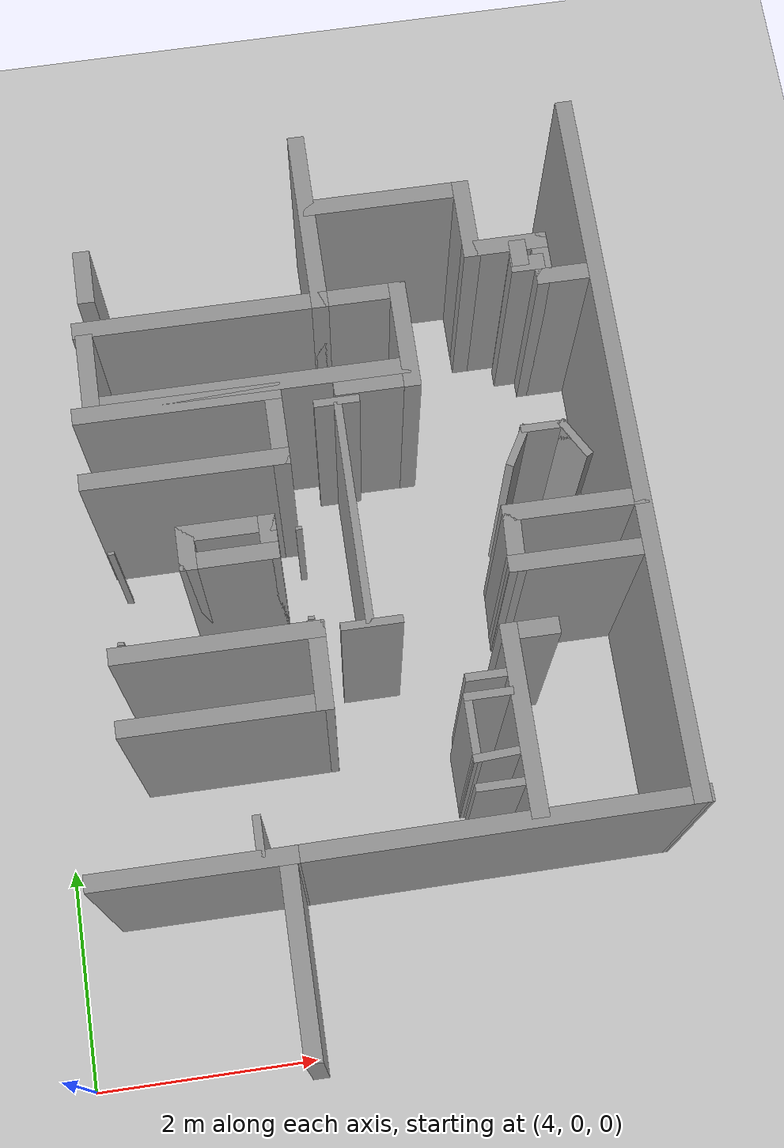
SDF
<sdf version="1.6">
 <world name="default">
  <model name="ground_plane">
   <static>1</static>
   <link name="link">
    <collision name="collision">
     <geometry><plane><normal>0 0 1</normal><size>100 100</size></plane></geometry>
     <surface><friction><ode><mu>100</mu><mu2>50</mu2></ode></friction></surface>
    </collision>
    <visual name="visual">
     <cast_shadows>0</cast_shadows>
     <geometry><plane><normal>0 0 1</normal><size>100 100</size></plane></geometry>
     <material>
      <script><uri>file://media/materials/scripts/gazebo.material</uri><name>Gazebo/Grey</name></script>
     </material>
    </visual>
   </link>
  </model>
  <model name="room4">
   <pose>4.66 3.88 0 0 -0 3.14</pose>
   <link name="Wall_101">
    <collision name="Wall_101_Collision">
     <geometry><box><size>0.5 0.15 2.5</size></box></geometry>
     <pose>0 0 1.25 0 -0 0</pose>
    </collision>
    <visual name="Wall_101_Visual">
     <pose>0 0 1.25 0 -0 0</pose>
     <geometry><box><size>0.5 0.15 2.5</size></box></geometry>
     <material>
      <script><uri>file://media/materials/scripts/gazebo.material</uri><name>Gazebo/Grey</name></script>
      <ambient>1 1 1 1</ambient>
     </material>
     <meta><layer>0</layer></meta>
    </visual>
    <pose>-0.238275 -2.90211 0 0 -0 1.5708</pose>
   </link>
   <link name="Wall_103">
    <collision name="Wall_103_Collision">
     <geometry><box><size>0.85 0.15 2.5</size></box></geometry>
     <pose>0 0 1.25 0 -0 0</pose>
    </collision>
    <visual name="Wall_103_Visual">
     <pose>0 0 1.25 0 -0 0</pose>
     <geometry><box><size>0.85 0.15 2.5</size></box></geometry>
     <material>
      <script><uri>file://media/materials/scripts/gazebo.material</uri><name>Gazebo/Grey</name></script>
      <ambient>1 1 1 1</ambient>
     </material>
     <meta><layer>0</layer></meta>
    </visual>
    <pose>-1.20078 -0.157139 0 0 -0 0</pose>
   </link>
   <link name="Wall_105">
    <collision name="Wall_105_Collision">
     <geometry><box><size>0.4 0.15 2.5</size></box></geometry>
     <pose>0 0 1.25 0 -0 0</pose>
    </collision>
    <visual name="Wall_105_Visual">
     <pose>0 0 1.25 0 -0 0</pose>
     <geometry><box><size>0.4 0.15 2.5</size></box></geometry>
     <material>
      <script><uri>file://media/materials/scripts/gazebo.material</uri><name>Gazebo/Grey</name></script>
      <ambient>1 1 1 1</ambient>
     </material>
     <meta><layer>0</layer></meta>
    </visual>
    <pose>-0.850776 -0.282139 0 0 -0 -1.5708</pose>
   </link>
   <link name="Wall_109">
    <collision name="Wall_109_Collision">
     <geometry><box><size>0.4 0.15 2.5</size></box></geometry>
     <pose>0 0 1.25 0 -0 0</pose>
    </collision>
    <visual name="Wall_109_Visual">
     <pose>0 0 1.25 0 -0 0</pose>
     <geometry><box><size>0.4 0.15 2.5</size></box></geometry>
     <material>
      <script><uri>file://media/materials/scripts/gazebo.material</uri><name>Gazebo/Grey</name></script>
      <ambient>1 1 1 1</ambient>
     </material>
     <meta><layer>0</layer></meta>
    </visual>
    <pose>-1.55078 -0.282139 0 0 -0 -1.5708</pose>
   </link>
   <link name="Wall_116">
    <collision name="Wall_116_Collision">
     <geometry><box><size>0.85 0.15 2.5</size></box></geometry>
     <pose>0 0 1.25 0 -0 0</pose>
    </collision>
    <visual name="Wall_116_Visual">
     <pose>0 0 1.25 0 -0 0</pose>
     <geometry><box><size>0.85 0.15 2.5</size></box></geometry>
     <material>
      <script><uri>file://media/materials/scripts/gazebo.material</uri><name>Gazebo/Grey</name></script>
      <ambient>1 1 1 1</ambient>
     </material>
     <meta><layer>0</layer></meta>
    </visual>
    <pose>-1.20078 -0.407139 0 0 -0 0</pose>
   </link>
   <link name="Wall_118">
    <collision name="Wall_118_Collision">
     <geometry><box><size>0.35 0.07 2.5</size></box></geometry>
     <pose>0 0 1.25 0 -0 0</pose>
    </collision>
    <visual name="Wall_118_Visual">
     <pose>0 0 1.25 0 -0 0</pose>
     <geometry><box><size>0.35 0.07 2.5</size></box></geometry>
     <material>
      <script><uri>file://media/materials/scripts/gazebo.material</uri><name>Gazebo/Grey</name></script>
      <ambient>1 1 1 1</ambient>
     </material>
     <meta><layer>0</layer></meta>
    </visual>
    <pose>-1.15474 2.22246 0 0 -0 1.5708</pose>
   </link>
   <link name="Wall_16">
    <collision name="Wall_16_Collision">
     <geometry><box><size>1.73309 0.15 2.5</size></box></geometry>
     <pose>0 0 1.25 0 -0 0</pose>
    </collision>
    <visual name="Wall_16_Visual">
     <pose>0 0 1.25 0 -0 0</pose>
     <geometry><box><size>1.73309 0.15 2.5</size></box></geometry>
     <material>
      <script><uri>file://media/materials/scripts/gazebo.material</uri><name>Gazebo/Grey</name></script>
      <ambient>1 1 1 1</ambient>
     </material>
     <meta><layer>0</layer></meta>
    </visual>
    <pose>-0.591667 2.40966 0 0 -0 -3.14153</pose>
   </link>
   <link name="Wall_2">
    <collision name="Wall_2_Collision">
     <geometry><box><size>6.50004 0.15 2.5</size></box></geometry>
     <pose>0 0 1.25 0 -0 0</pose>
    </collision>
    <visual name="Wall_2_Visual">
     <pose>0 0 1.25 0 -0 0</pose>
     <geometry><box><size>6.50004 0.15 2.5</size></box></geometry>
     <material>
      <script><uri>file://media/materials/scripts/gazebo.material</uri><name>Gazebo/Grey</name></script>
      <ambient>1 1 1 1</ambient>
     </material>
     <meta><layer>0</layer></meta>
    </visual>
    <pose>-4.72471 -0.79139 0 0 -0 1.57442</pose>
   </link>
   <link name="Wall_22">
    <collision name="Wall_22_Collision">
     <geometry><box><size>1.65 0.15 2.5</size></box></geometry>
     <pose>0 0 1.25 0 -0 0</pose>
    </collision>
    <visual name="Wall_22_Visual">
     <pose>0 0 1.25 0 -0 0</pose>
     <geometry><box><size>1.65 0.15 2.5</size></box></geometry>
     <material>
      <script><uri>file://media/materials/scripts/gazebo.material</uri><name>Gazebo/Grey</name></script>
      <ambient>1 1 1 1</ambient>
     </material>
     <meta><layer>0</layer></meta>
    </visual>
    <pose>-3.42012 1.5697 0 0 -0 -1.5708</pose>
   </link>
   <link name="Wall_23">
    <collision name="Wall_23_Collision">
     <geometry><box><size>0.5 0.15 2.5</size></box></geometry>
     <pose>0 0 1.25 0 -0 0</pose>
    </collision>
    <visual name="Wall_23_Visual">
     <pose>0 0 1.25 0 -0 0</pose>
     <geometry><box><size>0.5 0.15 2.5</size></box></geometry>
     <material>
      <script><uri>file://media/materials/scripts/gazebo.material</uri><name>Gazebo/Grey</name></script>
      <ambient>1 1 1 1</ambient>
     </material>
     <meta><layer>0</layer></meta>
    </visual>
    <pose>-3.59512 0.819703 0 0 -0 3.14159</pose>
   </link>
   <link name="Wall_25">
    <collision name="Wall_25_Collision">
     <geometry><box><size>0.420174 0.07 2.5</size></box></geometry>
     <pose>0 0 1.25 0 -0 0</pose>
    </collision>
    <visual name="Wall_25_Visual">
     <pose>0 0 1.25 0 -0 0</pose>
     <geometry><box><size>0.420174 0.07 2.5</size></box></geometry>
     <material>
      <script><uri>file://media/materials/scripts/gazebo.material</uri><name>Gazebo/Grey</name></script>
      <ambient>1 1 1 1</ambient>
     </material>
     <meta><layer>0</layer></meta>
    </visual>
    <pose>-3.20529 1.15958 0 0 -0 0</pose>
   </link>
   <link name="Wall_28">
    <collision name="Wall_28_Collision">
     <geometry><box><size>0.420571 0.07 2.5</size></box></geometry>
     <pose>0 0 1.25 0 -0 0</pose>
    </collision>
    <visual name="Wall_28_Visual">
     <pose>0 0 1.25 0 -0 0</pose>
     <geometry><box><size>0.420571 0.07 2.5</size></box></geometry>
     <material>
      <script><uri>file://media/materials/scripts/gazebo.material</uri><name>Gazebo/Grey</name></script>
      <ambient>1 1 1 1</ambient>
     </material>
     <meta><layer>0</layer></meta>
    </visual>
    <pose>-3.16529 1.82958 0 0 -0 0.057081</pose>
   </link>
   <link name="Wall_29">
    <collision name="Wall_29_Collision">
     <geometry><box><size>0.59 0.07 2.5</size></box></geometry>
     <pose>0 0 1.25 0 -0 0</pose>
    </collision>
    <visual name="Wall_29_Visual">
     <pose>0 0 1.25 0 -0 0</pose>
     <geometry><box><size>0.59 0.07 2.5</size></box></geometry>
     <material>
      <script><uri>file://media/materials/scripts/gazebo.material</uri><name>Gazebo/Grey</name></script>
      <ambient>1 1 1 1</ambient>
     </material>
     <meta><layer>0</layer></meta>
    </visual>
    <pose>-2.99029 1.57958 0 0 -0 -1.5708</pose>
   </link>
   <link name="Wall_3">
    <collision name="Wall_3_Collision">
     <geometry><box><size>3.5461 0.15 2.5</size></box></geometry>
     <pose>0 0 1.25 0 -0 0</pose>
    </collision>
    <visual name="Wall_3_Visual">
     <pose>0 0 1.25 0 -0 0</pose>
     <geometry><box><size>3.5461 0.15 2.5</size></box></geometry>
     <material>
      <script><uri>file://media/materials/scripts/gazebo.material</uri><name>Gazebo/Grey</name></script>
      <ambient>1 1 1 1</ambient>
     </material>
     <meta><layer>0</layer></meta>
    </visual>
    <pose>-3.06121 2.39661 0 0 -0 0.007656</pose>
   </link>
   <link name="Wall_30">
    <collision name="Wall_30_Collision">
     <geometry><box><size>0.419826 0.07 2.5</size></box></geometry>
     <pose>0 0 1.25 0 -0 0</pose>
    </collision>
    <visual name="Wall_30_Visual">
     <pose>0 0 1.25 0 -0 0</pose>
     <geometry><box><size>0.419826 0.07 2.5</size></box></geometry>
     <material>
      <script><uri>file://media/materials/scripts/gazebo.material</uri><name>Gazebo/Grey</name></script>
      <ambient>1 1 1 1</ambient>
     </material>
     <meta><layer>0</layer></meta>
    </visual>
    <pose>-3.16529 1.31958 0 0 -0 3.14159</pose>
   </link>
   <link name="Wall_33">
    <collision name="Wall_33_Collision">
     <geometry><box><size>0.42 0.07 2.5</size></box></geometry>
     <pose>0 0 1.25 0 -0 0</pose>
    </collision>
    <visual name="Wall_33_Visual">
     <pose>0 0 1.25 0 -0 0</pose>
     <geometry><box><size>0.42 0.07 2.5</size></box></geometry>
     <material>
      <script><uri>file://media/materials/scripts/gazebo.material</uri><name>Gazebo/Grey</name></script>
      <ambient>1 1 1 1</ambient>
     </material>
     <meta><layer>0</layer></meta>
    </visual>
    <pose>-3.14529 2.07958 0 0 -0 0</pose>
   </link>
   <link name="Wall_35">
    <collision name="Wall_35_Collision">
     <geometry><box><size>1.25 0.15 2.5</size></box></geometry>
     <pose>0 0 1.25 0 -0 0</pose>
    </collision>
    <visual name="Wall_35_Visual">
     <pose>0 0 1.25 0 -0 0</pose>
     <geometry><box><size>1.25 0.15 2.5</size></box></geometry>
     <material>
      <script><uri>file://media/materials/scripts/gazebo.material</uri><name>Gazebo/Grey</name></script>
      <ambient>1 1 1 1</ambient>
     </material>
     <meta><layer>0</layer></meta>
    </visual>
    <pose>-4.13012 0.239702 0 0 -0 0</pose>
   </link>
   <link name="Wall_36">
    <collision name="Wall_36_Collision">
     <geometry><box><size>0.6 0.15 2.5</size></box></geometry>
     <pose>0 0 1.25 0 -0 0</pose>
    </collision>
    <visual name="Wall_36_Visual">
     <pose>0 0 1.25 0 -0 0</pose>
     <geometry><box><size>0.6 0.15 2.5</size></box></geometry>
     <material>
      <script><uri>file://media/materials/scripts/gazebo.material</uri><name>Gazebo/Grey</name></script>
      <ambient>1 1 1 1</ambient>
     </material>
     <meta><layer>0</layer></meta>
    </visual>
    <pose>-3.59164 0.014998 0 0 -0 -1.62203</pose>
   </link>
   <link name="Wall_38">
    <collision name="Wall_38_Collision">
     <geometry><box><size>1.25 0.15 2.5</size></box></geometry>
     <pose>0 0 1.25 0 -0 0</pose>
    </collision>
    <visual name="Wall_38_Visual">
     <pose>0 0 1.25 0 -0 0</pose>
     <geometry><box><size>1.25 0.15 2.5</size></box></geometry>
     <material>
      <script><uri>file://media/materials/scripts/gazebo.material</uri><name>Gazebo/Grey</name></script>
      <ambient>1 1 1 1</ambient>
     </material>
     <meta><layer>0</layer></meta>
    </visual>
    <pose>-4.15317 -0.209707 0 0 -0 3.14159</pose>
   </link>
   <link name="Wall_4">
    <collision name="Wall_4_Collision">
     <geometry><box><size>1.707 0.15 2.5</size></box></geometry>
     <pose>0 0 1.25 0 -0 0</pose>
    </collision>
    <visual name="Wall_4_Visual">
     <pose>0 0 1.25 0 -0 0</pose>
     <geometry><box><size>1.707 0.15 2.5</size></box></geometry>
     <material>
      <script><uri>file://media/materials/scripts/gazebo.material</uri><name>Gazebo/Grey</name></script>
      <ambient>1 1 1 1</ambient>
     </material>
     <meta><layer>0</layer></meta>
    </visual>
    <pose>-1.36171 3.18811 0 0 -0 1.56887</pose>
   </link>
   <link name="Wall_40">
    <collision name="Wall_40_Collision">
     <geometry><box><size>0.4 0.07 2.5</size></box></geometry>
     <pose>0 0 1.25 0 -0 0</pose>
    </collision>
    <visual name="Wall_40_Visual">
     <pose>0 0 1.25 0 -0 0</pose>
     <geometry><box><size>0.4 0.07 2.5</size></box></geometry>
     <material>
      <script><uri>file://media/materials/scripts/gazebo.material</uri><name>Gazebo/Grey</name></script>
      <ambient>1 1 1 1</ambient>
     </material>
     <meta><layer>0</layer></meta>
    </visual>
    <pose>-4.25779 -0.803416 0 0 -0 -1.04752</pose>
   </link>
   <link name="Wall_42">
    <collision name="Wall_42_Collision">
     <geometry><box><size>0.399985 0.07 2.5</size></box></geometry>
     <pose>0 0 1.25 0 -0 0</pose>
    </collision>
    <visual name="Wall_42_Visual">
     <pose>0 0 1.25 0 -0 0</pose>
     <geometry><box><size>0.399985 0.07 2.5</size></box></geometry>
     <material>
      <script><uri>file://media/materials/scripts/gazebo.material</uri><name>Gazebo/Grey</name></script>
      <ambient>1 1 1 1</ambient>
     </material>
     <meta><layer>0</layer></meta>
    </visual>
    <pose>-4.25779 -0.803416 0 0 -0 -1.04752</pose>
   </link>
   <link name="Wall_44">
    <collision name="Wall_44_Collision">
     <geometry><box><size>0.4 0.07 2.5</size></box></geometry>
     <pose>0 0 1.25 0 -0 0</pose>
    </collision>
    <visual name="Wall_44_Visual">
     <pose>0 0 1.25 0 -0 0</pose>
     <geometry><box><size>0.4 0.07 2.5</size></box></geometry>
     <material>
      <script><uri>file://media/materials/scripts/gazebo.material</uri><name>Gazebo/Grey</name></script>
      <ambient>1 1 1 1</ambient>
     </material>
     <meta><layer>0</layer></meta>
    </visual>
    <pose>-4.01029 -0.946416 0 0 -0 0</pose>
   </link>
   <link name="Wall_46">
    <collision name="Wall_46_Collision">
     <geometry><box><size>0.4 0.07 2.5</size></box></geometry>
     <pose>0 0 1.25 0 -0 0</pose>
    </collision>
    <visual name="Wall_46_Visual">
     <pose>0 0 1.25 0 -0 0</pose>
     <geometry><box><size>0.4 0.07 2.5</size></box></geometry>
     <material>
      <script><uri>file://media/materials/scripts/gazebo.material</uri><name>Gazebo/Grey</name></script>
      <ambient>1 1 1 1</ambient>
     </material>
     <meta><layer>0</layer></meta>
    </visual>
    <pose>-3.76279 -0.803522 0 0 -0 1.0472</pose>
   </link>
   <link name="Wall_48">
    <collision name="Wall_48_Collision">
     <geometry><box><size>0.53 0.07 2.5</size></box></geometry>
     <pose>0 0 1.25 0 -0 0</pose>
    </collision>
    <visual name="Wall_48_Visual">
     <pose>0 0 1.25 0 -0 0</pose>
     <geometry><box><size>0.53 0.07 2.5</size></box></geometry>
     <material>
      <script><uri>file://media/materials/scripts/gazebo.material</uri><name>Gazebo/Grey</name></script>
      <ambient>1 1 1 1</ambient>
     </material>
     <meta><layer>0</layer></meta>
    </visual>
    <pose>-2.30502 0.584625 0 0 -0 0</pose>
   </link>
   <link name="Wall_50">
    <collision name="Wall_50_Collision">
     <geometry><box><size>2 0.07 2.5</size></box></geometry>
     <pose>0 0 1.25 0 -0 0</pose>
    </collision>
    <visual name="Wall_50_Visual">
     <pose>0 0 1.25 0 -0 0</pose>
     <geometry><box><size>2 0.07 2.5</size></box></geometry>
     <material>
      <script><uri>file://media/materials/scripts/gazebo.material</uri><name>Gazebo/Grey</name></script>
      <ambient>1 1 1 1</ambient>
     </material>
     <meta><layer>0</layer></meta>
    </visual>
    <pose>-2.29016 -0.415355 0 0 -0 -1.5708</pose>
   </link>
   <link name="Wall_53">
    <collision name="Wall_53_Collision">
     <geometry><box><size>0.4 0.07 2.5</size></box></geometry>
     <pose>0 0 1.25 0 -0 0</pose>
    </collision>
    <visual name="Wall_53_Visual">
     <pose>0 0 1.25 0 -0 0</pose>
     <geometry><box><size>0.4 0.07 2.5</size></box></geometry>
     <material>
      <script><uri>file://media/materials/scripts/gazebo.material</uri><name>Gazebo/Grey</name></script>
      <ambient>1 1 1 1</ambient>
     </material>
     <meta><layer>0</layer></meta>
    </visual>
    <pose>-2.28257 -1.42673 0 0 -0 0</pose>
   </link>
   <link name="Wall_55">
    <collision name="Wall_55_Collision">
     <geometry><box><size>0.75 0.15 2.5</size></box></geometry>
     <pose>0 0 1.25 0 -0 0</pose>
    </collision>
    <visual name="Wall_55_Visual">
     <pose>0 0 1.25 0 -0 0</pose>
     <geometry><box><size>0.75 0.15 2.5</size></box></geometry>
     <material>
      <script><uri>file://media/materials/scripts/gazebo.material</uri><name>Gazebo/Grey</name></script>
      <ambient>1 1 1 1</ambient>
     </material>
     <meta><layer>0</layer></meta>
    </visual>
    <pose>-2.64961 -1.54869 0 0 -0 0</pose>
   </link>
   <link name="Wall_59">
    <collision name="Wall_59_Collision">
     <geometry><box><size>1 0.15 2.5</size></box></geometry>
     <pose>0 0 1.25 0 -0 0</pose>
    </collision>
    <visual name="Wall_59_Visual">
     <pose>0 0 1.25 0 -0 0</pose>
     <geometry><box><size>1 0.15 2.5</size></box></geometry>
     <material>
      <script><uri>file://media/materials/scripts/gazebo.material</uri><name>Gazebo/Grey</name></script>
      <ambient>1 1 1 1</ambient>
     </material>
     <meta><layer>0</layer></meta>
    </visual>
    <pose>-2.95478 -1.97145 0 0 -0 -1.5708</pose>
   </link>
   <link name="Wall_61">
    <collision name="Wall_61_Collision">
     <geometry><box><size>0.825099 0.15 2.5</size></box></geometry>
     <pose>0 0 1.25 0 -0 0</pose>
    </collision>
    <visual name="Wall_61_Visual">
     <pose>0 0 1.25 0 -0 0</pose>
     <geometry><box><size>0.825099 0.15 2.5</size></box></geometry>
     <material>
      <script><uri>file://media/materials/scripts/gazebo.material</uri><name>Gazebo/Grey</name></script>
      <ambient>1 1 1 1</ambient>
     </material>
     <meta><layer>0</layer></meta>
    </visual>
    <pose>-2.61723 -2.39645 0 0 -0 0</pose>
   </link>
   <link name="Wall_62">
    <collision name="Wall_62_Collision">
     <geometry><box><size>1.7 0.15 2.5</size></box></geometry>
     <pose>0 0 1.25 0 -0 0</pose>
    </collision>
    <visual name="Wall_62_Visual">
     <pose>0 0 1.25 0 -0 0</pose>
     <geometry><box><size>1.7 0.15 2.5</size></box></geometry>
     <material>
      <script><uri>file://media/materials/scripts/gazebo.material</uri><name>Gazebo/Grey</name></script>
      <ambient>1 1 1 1</ambient>
     </material>
     <meta><layer>0</layer></meta>
    </visual>
    <pose>-2.26219 -3.17145 0 0 -0 -1.5708</pose>
   </link>
   <link name="Wall_64">
    <collision name="Wall_64_Collision">
     <geometry><box><size>1.5 0.15 2.5</size></box></geometry>
     <pose>0 0 1.25 0 -0 0</pose>
    </collision>
    <visual name="Wall_64_Visual">
     <pose>0 0 1.25 0 -0 0</pose>
     <geometry><box><size>1.5 0.15 2.5</size></box></geometry>
     <material>
      <script><uri>file://media/materials/scripts/gazebo.material</uri><name>Gazebo/Grey</name></script>
      <ambient>1 1 1 1</ambient>
     </material>
     <meta><layer>0</layer></meta>
    </visual>
    <pose>-2.98265 -3.29817 0 0 -0 3.14159</pose>
   </link>
   <link name="Wall_65">
    <collision name="Wall_65_Collision">
     <geometry><box><size>0.75 0.15 2.5</size></box></geometry>
     <pose>0 0 1.25 0 -0 0</pose>
    </collision>
    <visual name="Wall_65_Visual">
     <pose>0 0 1.25 0 -0 0</pose>
     <geometry><box><size>0.75 0.15 2.5</size></box></geometry>
     <material>
      <script><uri>file://media/materials/scripts/gazebo.material</uri><name>Gazebo/Grey</name></script>
      <ambient>1 1 1 1</ambient>
     </material>
     <meta><layer>0</layer></meta>
    </visual>
    <pose>-3.65765 -2.99817 0 0 -0 1.5708</pose>
   </link>
   <link name="Wall_66">
    <collision name="Wall_66_Collision">
     <geometry><box><size>0.75 0.15 2.5</size></box></geometry>
     <pose>0 0 1.25 0 -0 0</pose>
    </collision>
    <visual name="Wall_66_Visual">
     <pose>0 0 1.25 0 -0 0</pose>
     <geometry><box><size>0.75 0.15 2.5</size></box></geometry>
     <material>
      <script><uri>file://media/materials/scripts/gazebo.material</uri><name>Gazebo/Grey</name></script>
      <ambient>1 1 1 1</ambient>
     </material>
     <meta><layer>0</layer></meta>
    </visual>
    <pose>-3.95765 -2.69817 0 0 -0 3.14159</pose>
   </link>
   <link name="Wall_67">
    <collision name="Wall_67_Collision">
     <geometry><box><size>0.5 0.15 2.5</size></box></geometry>
     <pose>0 0 1.25 0 -0 0</pose>
    </collision>
    <visual name="Wall_67_Visual">
     <pose>0 0 1.25 0 -0 0</pose>
     <geometry><box><size>0.5 0.15 2.5</size></box></geometry>
     <material>
      <script><uri>file://media/materials/scripts/gazebo.material</uri><name>Gazebo/Grey</name></script>
      <ambient>1 1 1 1</ambient>
     </material>
     <meta><layer>0</layer></meta>
    </visual>
    <pose>-4.25765 -2.52317 0 0 -0 1.5708</pose>
   </link>
   <link name="Wall_68">
    <collision name="Wall_68_Collision">
     <geometry><box><size>0.5 0.15 2.5</size></box></geometry>
     <pose>0 0 1.25 0 -0 0</pose>
    </collision>
    <visual name="Wall_68_Visual">
     <pose>0 0 1.25 0 -0 0</pose>
     <geometry><box><size>0.5 0.15 2.5</size></box></geometry>
     <material>
      <script><uri>file://media/materials/scripts/gazebo.material</uri><name>Gazebo/Grey</name></script>
      <ambient>1 1 1 1</ambient>
     </material>
     <meta><layer>0</layer></meta>
    </visual>
    <pose>-4.43265 -2.34817 0 0 -0 3.14159</pose>
   </link>
   <link name="Wall_71">
    <collision name="Wall_71_Collision">
     <geometry><box><size>0.3 0.15 2.5</size></box></geometry>
     <pose>0 0 1.25 0 -0 0</pose>
    </collision>
    <visual name="Wall_71_Visual">
     <pose>0 0 1.25 0 -0 0</pose>
     <geometry><box><size>0.3 0.15 2.5</size></box></geometry>
     <material>
      <script><uri>file://media/materials/scripts/gazebo.material</uri><name>Gazebo/Grey</name></script>
      <ambient>1 1 1 1</ambient>
     </material>
     <meta><layer>0</layer></meta>
    </visual>
    <pose>-4.12653 -2.49363 0 0 -0 3.14159</pose>
   </link>
   <link name="Wall_76">
    <collision name="Wall_76_Collision">
     <geometry><box><size>0.25 0.15 2.5</size></box></geometry>
     <pose>0 0 1.25 0 -0 0</pose>
    </collision>
    <visual name="Wall_76_Visual">
     <pose>0 0 1.25 0 -0 0</pose>
     <geometry><box><size>0.25 0.15 2.5</size></box></geometry>
     <material>
      <script><uri>file://media/materials/scripts/gazebo.material</uri><name>Gazebo/Grey</name></script>
      <ambient>1 1 1 1</ambient>
     </material>
     <meta><layer>0</layer></meta>
    </visual>
    <pose>-4.06562 -2.60079 0 0 -0 -1.5708</pose>
   </link>
   <link name="Wall_78">
    <collision name="Wall_78_Collision">
     <geometry><box><size>1.79678 0.15 2.5</size></box></geometry>
     <pose>0 0 1.25 0 -0 0</pose>
    </collision>
    <visual name="Wall_78_Visual">
     <pose>0 0 1.25 0 -0 0</pose>
     <geometry><box><size>1.79678 0.15 2.5</size></box></geometry>
     <material>
      <script><uri>file://media/materials/scripts/gazebo.material</uri><name>Gazebo/Grey</name></script>
      <ambient>1 1 1 1</ambient>
     </material>
     <meta><layer>0</layer></meta>
    </visual>
    <pose>-1.00189 1.19457 0 0 -0 0</pose>
   </link>
   <link name="Wall_82">
    <collision name="Wall_82_Collision">
     <geometry><box><size>1.81 0.15 2.5</size></box></geometry>
     <pose>0 0 1.25 0 -0 0</pose>
    </collision>
    <visual name="Wall_82_Visual">
     <pose>0 0 1.25 0 -0 0</pose>
     <geometry><box><size>1.81 0.15 2.5</size></box></geometry>
     <material>
      <script><uri>file://media/materials/scripts/gazebo.material</uri><name>Gazebo/Grey</name></script>
      <ambient>1 1 1 1</ambient>
     </material>
     <meta><layer>0</layer></meta>
    </visual>
    <pose>-1.0085 0.574569 0 0 -0 3.14159</pose>
   </link>
   <link name="Wall_84">
    <collision name="Wall_84_Collision">
     <geometry><box><size>0.770141 0.15 2.5</size></box></geometry>
     <pose>0 0 1.25 0 -0 0</pose>
    </collision>
    <visual name="Wall_84_Visual">
     <pose>0 0 1.25 0 -0 0</pose>
     <geometry><box><size>0.770141 0.15 2.5</size></box></geometry>
     <material>
      <script><uri>file://media/materials/scripts/gazebo.material</uri><name>Gazebo/Grey</name></script>
      <ambient>1 1 1 1</ambient>
     </material>
     <meta><layer>0</layer></meta>
    </visual>
    <pose>-1.83189 0.884569 0 0 -0 1.54947</pose>
   </link>
   <link name="Wall_86">
    <collision name="Wall_86_Collision">
     <geometry><box><size>1.81 0.15 2.5</size></box></geometry>
     <pose>0 0 1.25 0 -0 0</pose>
    </collision>
    <visual name="Wall_86_Visual">
     <pose>0 0 1.25 0 -0 0</pose>
     <geometry><box><size>1.81 0.15 2.5</size></box></geometry>
     <material>
      <script><uri>file://media/materials/scripts/gazebo.material</uri><name>Gazebo/Grey</name></script>
      <ambient>1 1 1 1</ambient>
     </material>
     <meta><layer>0</layer></meta>
    </visual>
    <pose>-0.915925 -0.987556 0 0 -0 0</pose>
   </link>
   <link name="Wall_90">
    <collision name="Wall_90_Collision">
     <geometry><box><size>1.81 0.15 2.5</size></box></geometry>
     <pose>0 0 1.25 0 -0 0</pose>
    </collision>
    <visual name="Wall_90_Visual">
     <pose>0 0 1.25 0 -0 0</pose>
     <geometry><box><size>1.81 0.15 2.5</size></box></geometry>
     <material>
      <script><uri>file://media/materials/scripts/gazebo.material</uri><name>Gazebo/Grey</name></script>
      <ambient>1 1 1 1</ambient>
     </material>
     <meta><layer>0</layer></meta>
    </visual>
    <pose>-0.915925 -1.59433 0 0 -0 3.14159</pose>
   </link>
   <link name="Wall_92">
    <collision name="Wall_92_Collision">
     <geometry><box><size>0.756775 0.15 2.5</size></box></geometry>
     <pose>0 0 1.25 0 -0 0</pose>
    </collision>
    <visual name="Wall_92_Visual">
     <pose>0 0 1.25 0 -0 0</pose>
     <geometry><box><size>0.756775 0.15 2.5</size></box></geometry>
     <material>
      <script><uri>file://media/materials/scripts/gazebo.material</uri><name>Gazebo/Grey</name></script>
      <ambient>1 1 1 1</ambient>
     </material>
     <meta><layer>0</layer></meta>
    </visual>
    <pose>-1.74592 -1.29094 0 0 -0 1.5708</pose>
   </link>
   <link name="Wall_94">
    <collision name="Wall_94_Collision">
     <geometry><box><size>2.25 0.15 2.5</size></box></geometry>
     <pose>0 0 1.25 0 -0 0</pose>
    </collision>
    <visual name="Wall_94_Visual">
     <pose>0 0 1.25 0 -0 0</pose>
     <geometry><box><size>2.25 0.15 2.5</size></box></geometry>
     <material>
      <script><uri>file://media/materials/scripts/gazebo.material</uri><name>Gazebo/Grey</name></script>
      <ambient>1 1 1 1</ambient>
     </material>
     <meta><layer>0</layer></meta>
    </visual>
    <pose>-1.21219 -2.39645 0 0 -0 0</pose>
   </link>
   <link name="Wall_97">
    <collision name="Wall_97_Collision">
     <geometry><box><size>0.75 0.15 2.5</size></box></geometry>
     <pose>0 0 1.25 0 -0 0</pose>
    </collision>
    <visual name="Wall_97_Visual">
     <pose>0 0 1.25 0 -0 0</pose>
     <geometry><box><size>0.75 0.15 2.5</size></box></geometry>
     <material>
      <script><uri>file://media/materials/scripts/gazebo.material</uri><name>Gazebo/Grey</name></script>
      <ambient>1 1 1 1</ambient>
     </material>
     <meta><layer>0</layer></meta>
    </visual>
    <pose>-0.185375 -1.97526 0 0 -0 -1.5708</pose>
   </link>
   <link name="Wall_99">
    <collision name="Wall_99_Collision">
     <geometry><box><size>2.85 0.15 2.5</size></box></geometry>
     <pose>0 0 1.25 0 -0 0</pose>
    </collision>
    <visual name="Wall_99_Visual">
     <pose>0 0 1.25 0 -0 0</pose>
     <geometry><box><size>2.85 0.15 2.5</size></box></geometry>
     <material>
      <script><uri>file://media/materials/scripts/gazebo.material</uri><name>Gazebo/Grey</name></script>
      <ambient>1 1 1 1</ambient>
     </material>
     <meta><layer>0</layer></meta>
    </visual>
    <pose>-1.53537 -1.67526 0 0 -0 3.14159</pose>
   </link>
   <static>1</static>
  </model>
  <model name="room6">
   <pose>5.633 4.125 0 0 -0 0</pose>
   <link name="Wall_12">
    <collision name="Wall_12_Collision">
     <geometry><box><size>0.06 0.03 1.5</size></box></geometry>
     <pose>0 0 0.75 0 -0 0</pose>
    </collision>
    <visual name="Wall_12_Visual">
     <pose>0 0 0.75 0 -0 0</pose>
     <geometry><box><size>0.06 0.03 1.5</size></box></geometry>
     <material>
      <script><uri>file://media/materials/scripts/gazebo.material</uri><name>Gazebo/Grey</name></script>
      <ambient>1 1 1 1</ambient>
     </material>
     <meta><layer>0</layer></meta>
    </visual>
    <pose>0.848 -0.425 0 0 -0 0</pose>
   </link>
   <link name="Wall_14">
    <collision name="Wall_14_Collision">
     <geometry><box><size>0.06 0.03 1.5</size></box></geometry>
     <pose>0 0 0.75 0 -0 0</pose>
    </collision>
    <visual name="Wall_14_Visual">
     <pose>0 0 0.75 0 -0 0</pose>
     <geometry><box><size>0.06 0.03 1.5</size></box></geometry>
     <material>
      <script><uri>file://media/materials/scripts/gazebo.material</uri><name>Gazebo/Grey</name></script>
      <ambient>1 1 1 1</ambient>
     </material>
     <meta><layer>0</layer></meta>
    </visual>
    <pose>-0.848 -0.425 0 0 -0 3.14159</pose>
   </link>
   <link name="Wall_16">
    <collision name="Wall_16_Collision">
     <geometry><box><size>0.06 0.03 1.5</size></box></geometry>
     <pose>0 0 0.75 0 -0 0</pose>
    </collision>
    <visual name="Wall_16_Visual">
     <pose>0 0 0.75 0 -0 0</pose>
     <geometry><box><size>0.06 0.03 1.5</size></box></geometry>
     <material>
      <script><uri>file://media/materials/scripts/gazebo.material</uri><name>Gazebo/Grey</name></script>
      <ambient>1 1 1 1</ambient>
     </material>
     <meta><layer>0</layer></meta>
    </visual>
    <pose>-0.848 0.425 0 0 -0 3.14159</pose>
   </link>
   <link name="Wall_18">
    <collision name="Wall_18_Collision">
     <geometry><box><size>0.06 0.03 1.5</size></box></geometry>
     <pose>0 0 0.75 0 -0 0</pose>
    </collision>
    <visual name="Wall_18_Visual">
     <pose>0 0 0.75 0 -0 0</pose>
     <geometry><box><size>0.06 0.03 1.5</size></box></geometry>
     <material>
      <script><uri>file://media/materials/scripts/gazebo.material</uri><name>Gazebo/Grey</name></script>
      <ambient>1 1 1 1</ambient>
     </material>
     <meta><layer>0</layer></meta>
    </visual>
    <pose>0.848 0.425 0 0 -0 0</pose>
   </link>
   <static>1</static>
  </model>
 </world>
</sdf>
